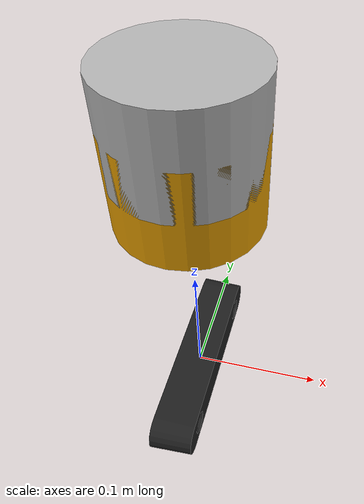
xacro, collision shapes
<?xml version="1.0"?>
<robot xmlns:xacro="http://www.ros.org/wiki/xacro" name="velodyne_zed2">
    <!-- property -->
    <xacro:property name="M_PI" value="3.1415926535897931" />

    <!-- velodyne:  vlp16 hdl32 hdl64 -->
    <xacro:arg name="velodyne" default="vlp16"/>
    <xacro:arg name="velodyne_x" default="0.0"/>
    <xacro:arg name="velodyne_y" default="0.0"/>
    <xacro:arg name="velodyne_z" default="0.2"/>
    <xacro:arg name="velodyne_roll" default="0.0"/>
    <xacro:arg name="velodyne_pitch" default="0.0"/>
    <xacro:arg name="velodyne_yaw" default="0.0"/>

    <xacro:arg name="K" default="0"/>
    <xacro:arg name="rate" default="10"/>
    <xacro:property name="K" default="$(arg K)"/>
    <xacro:property name="noise" value="${K * 0.000}" />

    <!-- zed2 -->
    <xacro:arg name="zed2_x" default="0.0"/>
    <xacro:arg name="zed2_y" default="0.0"/>
    <xacro:arg name="zed2_z" default="0.0"/>
    <xacro:arg name="zed2_roll" default="0.0"/>
    <xacro:arg name="zed2_pitch" default="0.0"/>
    <xacro:arg name="zed2_yaw" default="0.0"/>

    <!-- base -->
    <link name="world"/>

    <joint name="fixed" type="fixed">
        <parent link="world"/>
        <child link="base_link"/>
    </joint>

    <link name="base_link"/>

    <!-- zed2 -->
    <xacro:include filename="$(find sensors_description)/urdf/zed2.urdf.xacro"/>
    <xacro:zed2_camera parent="base_link" camera_name="zed2"  noise="0.000">
        <origin xyz="$(arg zed2_x) $(arg zed2_y) $(arg zed2_z)" rpy="$(arg zed2_roll) $(arg zed2_pitch) $(arg zed2_yaw)" />
    </xacro:zed2_camera>

    <!-- velodyne -->
    <xacro:include filename="$(find sensors_description)/urdf/$(arg velodyne).urdf.xacro"/>
    <xacro:velodyne parent="base_link" name="$(arg velodyne)" topic="velodyne_points" rate="$(arg rate)" noise="${noise}">
        <origin xyz="$(arg velodyne_x) $(arg velodyne_y) $(arg velodyne_z)" rpy="$(arg velodyne_roll) $(arg velodyne_pitch) $(arg velodyne_yaw)" />
    </xacro:velodyne>

</robot>

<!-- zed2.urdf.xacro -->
<robot xmlns:xacro="http://www.ros.org/wiki/xacro" name="zed2_camera">

    <!-- Properties -->
    <xacro:property name="baseline" value="0.12"/>
    <xacro:property name="hfov" value="92.329636758468765228252815135916"/>
    <xacro:property name="M_PI" value="3.1415926535897931"/>

    <!-- Includes -->
    <xacro:include filename="$(find sensors_description)/materials/zed_materials.urdf.xacro"/>
    <xacro:include filename="$(find sensors_description)/urdf/camera.gazebo.xacro"/>

    <!-- Macro -->
    <xacro:macro name="zed2_camera"
                 params="*origin parent:=base_frame camera_name:=zed2 image_width:=2208 image_height:=1242 hz:=15 image_format:=B8G8R8 noise:=0.0">

        <!-- Camera body -->
        <joint name="${camera_name}_base_joint" type="fixed">
            <parent link="${parent}"/>
            <child link="${camera_name}_body"/>
            <xacro:insert_block name="origin"/>
        </joint>

        <link name="${camera_name}_body">
            <inertial>
                <origin
                        xyz="0 0 0"
                        rpy="0 0 0"/>
                <mass
                        value="1.2318"/>
                <inertia
                        ixx="0.0029695"
                        ixy="1.6071E-08"
                        ixz="7.94620000000098E-12"
                        iyy="0.0029965"
                        iyz="2.55599998283537E-11"
                        izz="0.00019321"/>
            </inertial>
            <visual>
                <origin xyz="0 0 0" rpy="0 0 0"/>
                <geometry>
                    <mesh filename="package://sensors_description/meshes/zed2.STL"/>
                </geometry>
                <material name="zed2_mat"/>
            </visual>
            <collision>
                <origin rpy="0 0 0" xyz="0 0 0"/>
                <geometry>
                    <mesh filename="package://sensors_description/meshes/zed2.STL"/>
                </geometry>
            </collision>
        </link>

        <gazebo reference="${camera_name}_body">
            <material>Gazebo/Black</material>
        </gazebo>

        <!-- Left Camera -->
        <joint name="${camera_name}_left_camera_joint" type="fixed">
            <parent link="${camera_name}_body"/>
            <child link="${camera_name}_left_frame"/>
            <origin xyz="0 ${baseline/2} 0" rpy="0.0 0.0 0.0" />
        </joint>

        <link name="${camera_name}_left_frame"/>

        <joint name="${camera_name}_left_optical_joint" type="fixed">
            <origin xyz="0 0 0" rpy="${-M_PI/2} 0.0 ${-M_PI/2}"/>
            <parent link="${camera_name}_left_frame"/>
            <child link="${camera_name}_left_optical_frame"/>
        </joint>

        <link name="${camera_name}_left_optical_frame"/>

        <xacro:rgb_gazebo reference="${camera_name}_left_frame" name="left_camera" image_width="${image_width}"
                          image_height="${image_height}" hz="${hz}" image_format="${image_format}"
                          frame_id="${camera_name}_left_optical_frame" hfov="${hfov}"
                          focal_length="0" noise="${noise}">
        </xacro:rgb_gazebo>

        <!-- Right Camera -->
        <joint name="${camera_name}_right_camera_joint" type="fixed">
            <parent link="${camera_name}_body"/>
            <child link="${camera_name}_right_frame"/>
            <origin xyz="0 0 0" rpy="0.0 0.0 0.0"/>
        </joint>

        <link name="${camera_name}_right_frame"/>

        <joint name="${camera_name}_right_optical_joint" type="fixed">
            <origin xyz="0 0 0" rpy="${-M_PI/2} 0.0 ${-M_PI/2}"/>
            <parent link="${camera_name}_right_frame"/>
            <child link="${camera_name}_right_optical_frame"/>
        </joint>

        <link name="${camera_name}_right_optical_frame"/>

        <xacro:rgb_gazebo reference="${camera_name}_right_frame" name="right_camera" image_width="${image_width}"
                          image_height="${image_height}" hz="${hz}" image_format="${image_format}"
                          frame_id="${camera_name}_right_optical_frame" hfov="${hfov}"
                          focal_length="0" noise="${noise}">
        </xacro:rgb_gazebo>
    </xacro:macro>
</robot>

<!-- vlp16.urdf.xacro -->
<robot xmlns:xacro="http://www.ros.org/wiki/xacro" name="velodyne">
  <!-- Properties -->
  <xacro:property name="M_PI" value="3.1415926535897931" />

  <xacro:macro name="velodyne" params="*origin parent:=base_link name:=velodyne topic:=velodyne_points rate:=10 noise:=0.008">

    <xacro:if value="${rate==10}">
      <xacro:property name="samples" default="1875"/>
    </xacro:if>

    <xacro:if value="${rate==5}">
      <xacro:property name="samples" default="3750"/>
    </xacro:if>

    <joint name="${name}_base_mount_joint" type="fixed">
      <xacro:insert_block name="origin" />
      <parent link="${parent}"/>
      <child link="${name}_base_link"/>
    </joint>

    <link name="${name}_base_link">
      <inertial>
        <mass value="0.83"/>
        <origin xyz="0 0 0.03585"/>
        <inertia ixx="${(0.83 * (3.0*0.0516*0.0516 + 0.0717*0.0717)) / 12.0}" ixy="0" ixz="0"
          iyy="${(0.83 * (3.0*0.0516*0.0516 + 0.0717*0.0717)) / 12.0}" iyz="0"
          izz="${0.5 * 0.83 * (0.0516*0.0516)}"/>
      </inertial>
      <visual>
        <geometry>
          <mesh filename="package://sensors_description/meshes/VLP16_base_1.dae" />
        </geometry>
      </visual>
      <visual>
        <geometry>
          <mesh filename="package://sensors_description/meshes/VLP16_base_2.dae" />
        </geometry>
      </visual>
      <collision>
        <origin rpy="0 0 0" xyz="0 0 0.03585"/>
        <geometry>
          <cylinder radius="0.0516" length="0.0717"/>
        </geometry>
      </collision>
    </link>

    <joint name="${name}_base_scan_joint" type="fixed" >
      <origin xyz="0 0 0.0377" rpy="0 0 0" />
      <parent link="${name}_base_link" />
      <child link="${name}_frame"/>
    </joint>

    <link name="${name}_frame">
      <inertial>
        <mass value="0.01"/>
        <origin xyz="0 0 0"/>
        <inertia ixx="1e-7" ixy="0" ixz="0" iyy="1e-7" iyz="0" izz="1e-7"/>
      </inertial>
      <visual>
        <origin xyz="0 0 -0.0377" />
        <geometry>
          <mesh filename="package://sensors_description/meshes/VLP16_scan.dae" />
        </geometry>
      </visual>
      <collision>
        <origin rpy="0 0 0" xyz="0 0 -0.0377"/>
        <geometry>
          <cylinder radius="0.0516" length="0.0717"/>
        </geometry>
      </collision>
    </link>

    <!-- Gazebo requires the velodyne_gazebo_plugins package -->
    <gazebo reference="${name}_frame">
        <sensor type="ray" name="Velodyne-${name}">
          <pose>0 0 0 0 0 0</pose>
          <visualize>false</visualize>
          <update_rate>${rate}</update_rate>
          <ray>
            <scan>
              <horizontal>
                <samples>${samples}</samples>
                <resolution>1</resolution>
                <min_angle>-3.14159</min_angle>
                <max_angle>3.14159</max_angle>
              </horizontal>
              <vertical>
                <samples>16</samples>
                <resolution>1</resolution>
                <min_angle>-${15*M_PI/180.0}</min_angle>
                <max_angle>${15*M_PI/180.0}</max_angle>
              </vertical>
            </scan>
            <range>
              <min>0.9</min>
              <max>100</max>
              <resolution>0.03</resolution>
            </range>
            <noise>
              <type>gaussian</type>
              <mean>0.0</mean>
              <stddev>0.0</stddev>
            </noise>
          </ray>
          <plugin name="gazebo_ros_laser_controller" filename="libgazebo_ros_velodyne_laser.so">
            <topicName>${topic}</topicName>
            <frameName>${name}_frame</frameName>
            <min_range>0.9</min_range>
            <max_range>100</max_range>
            <gaussianNoise>${noise}</gaussianNoise>
          </plugin>
        </sensor>
    </gazebo>
  </xacro:macro>
</robot>
